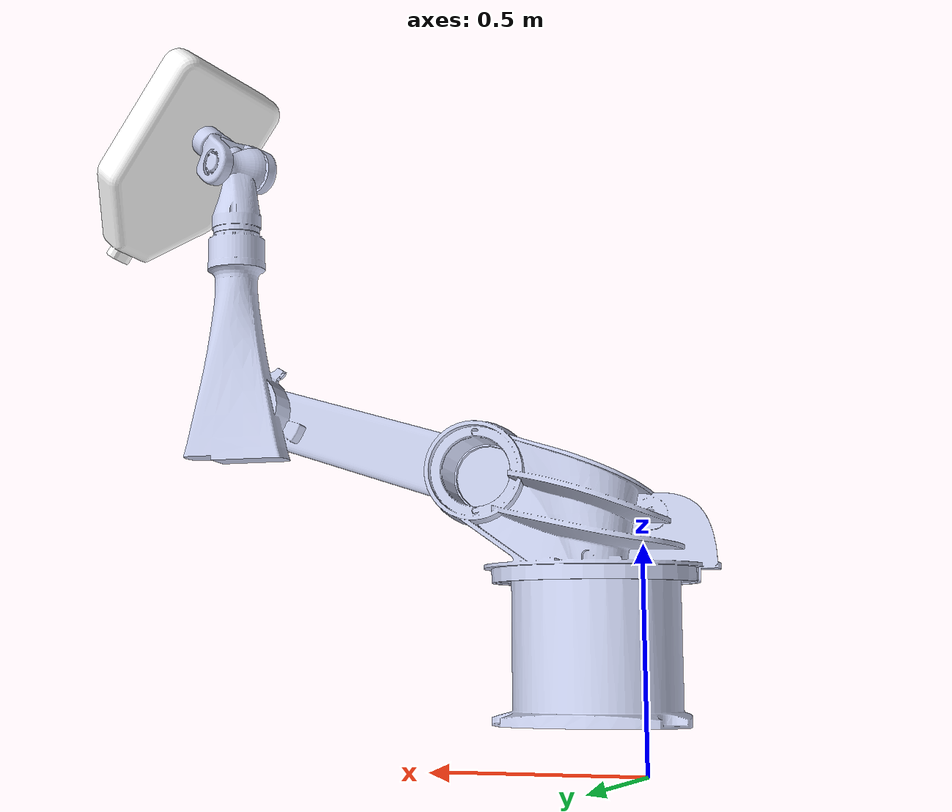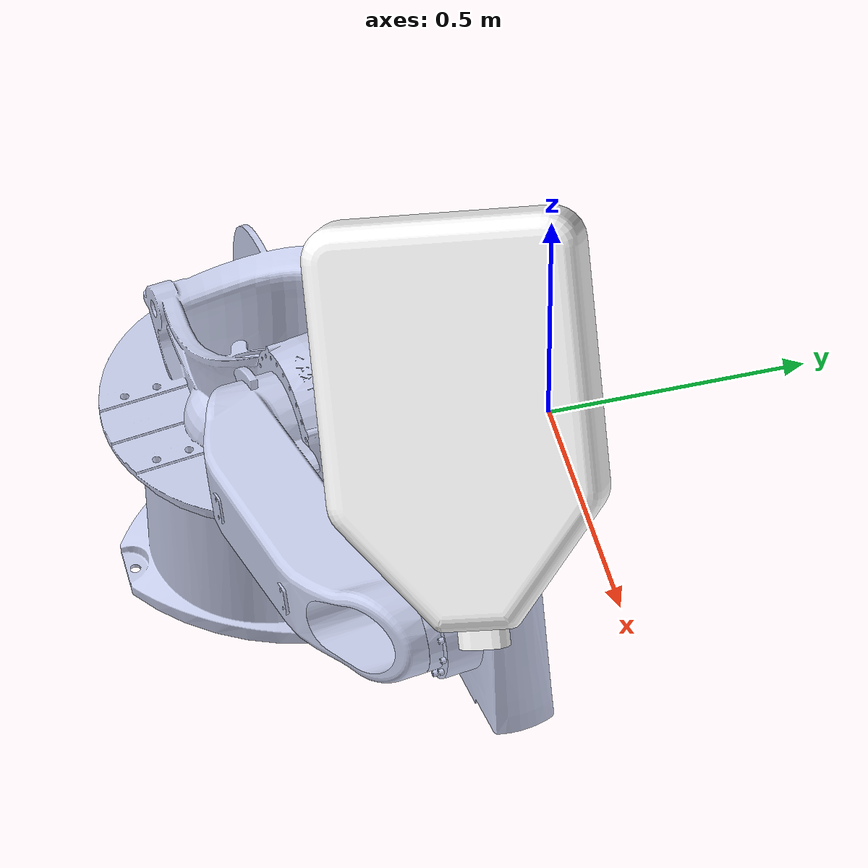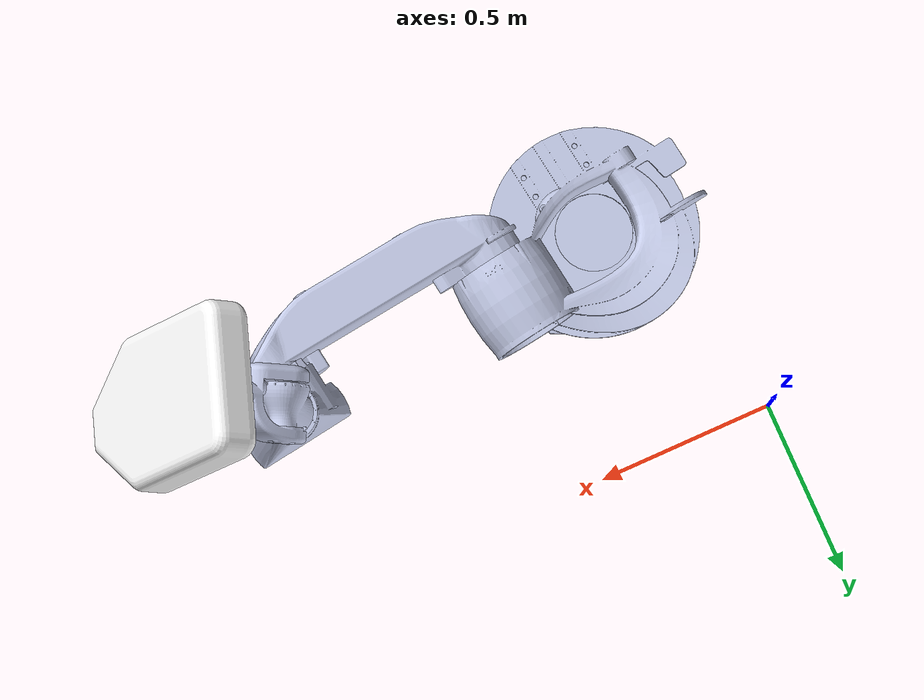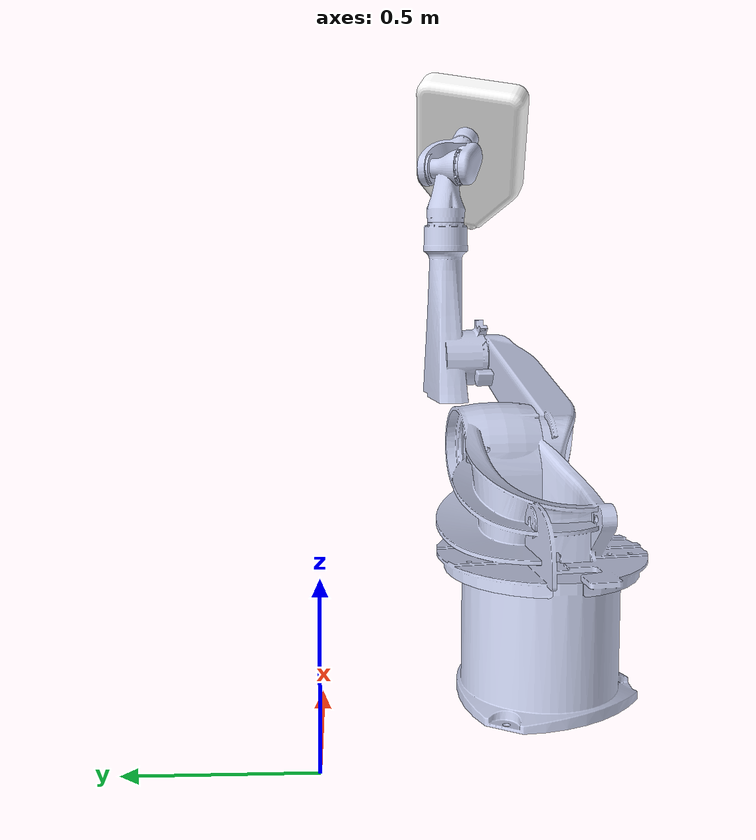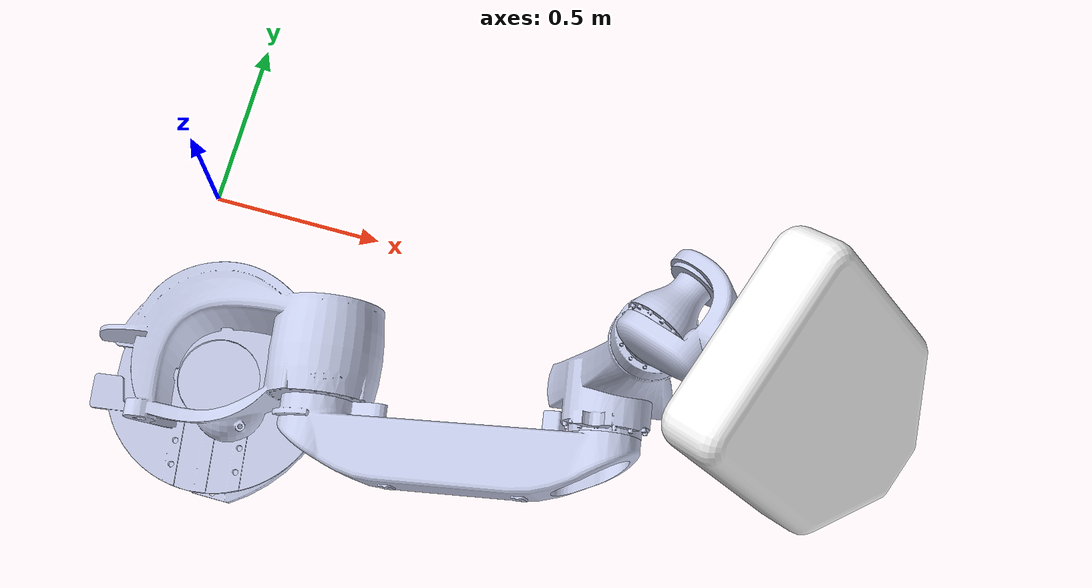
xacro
<?xml version="1.0"?>
<!-- Name your robot here -->
<robot name ="ck_robot" xmlns:xacro="http://wiki.ros.org/xacro">

<!-- Include your urdf files here -->
	<!-- Include Robot's urdf filepath -->
	<!-- Include Lidar's urdf filepath -->
	<xacro:include filename="ck_robot.urdf"/>

<!--  Gazebo plugin for control here is already added for you -->
	<gazebo>
		<plugin name="gazebo_ros_control" filename="libgazebo_ros_control.so">
			<robotNamespace>/ck_robot</robotNamespace>
			<robotSimType>gazebo_ros_control/DefaultRobotHWSim</robotSimType>
			<legacyModeNS>true</legacyModeNS>
		</plugin>
	</gazebo>
</robot>

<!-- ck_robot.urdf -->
<robot
  name="ck_robot">
  <link name="world" />
  <link
    name="base_link">
    <inertial>
      <origin
        xyz="0.268464969990104 0.284520791548056 0.59851966368383"
        rpy="0 0 0" />
      <mass
        value="60.1875042918917" />
      <inertia
        ixx="1.58272942356572"
        ixy="-1.00442193082991E-08"
        ixz="-6.13419327373049E-09"
        iyy="1.49216689626303"
        iyz="8.19101028288463E-06"
        izz="1.58271804885092" />
    </inertial>
    <visual>
      <origin
        xyz="0 0 0"
        rpy="0 0 0" />
      <geometry>
        <mesh
          filename="package://ck_robot/meshes/base_link.STL" />
      </geometry>
      <material
        name="">
        <color
          rgba="0.792156862745098 0.819607843137255 0.933333333333333 1" />
      </material>
    </visual>
    <collision>
      <origin
        xyz="0 0 0"
        rpy="0 0 0" />
      <geometry>
        <mesh
          filename="package://ck_robot/meshes/base_link.STL" />
      </geometry>
    </collision>
  </link>
  <link
    name="link_1">
    <inertial>
      <origin
        xyz="0.10280930500268 0.172949537137502 -0.0437085356954771"
        rpy="0 0 0" />
      <mass
        value="1" />
      <inertia
        ixx="0.361208774715564"
        ixy="-0.152719163095036"
        ixz="0.00577624624249581"
        iyy="0.646329104489432"
        iyz="0.0274979066592256"
        izz="0.643947644736266" />
    </inertial>
    <visual>
      <origin
        xyz="0 0 0"
        rpy="0 0 0" />
      <geometry>
        <mesh
          filename="package://ck_robot/meshes/link_1.STL" />
      </geometry>
      <material
        name="">
        <color
          rgba="0.792156862745098 0.819607843137255 0.933333333333333 1" />
      </material>
    </visual>
    <collision>
      <origin
        xyz="0 0 0"
        rpy="0 0 0" />
      <geometry>
        <mesh
          filename="package://ck_robot/meshes/link_1.STL" />
      </geometry>
    </collision>
  </link>
  <joint name="world_to_base_link" type="fixed">
    <parent link="world" />
    <child link="base_link" />
  </joint>
  <joint
    name="joint_1"
    type="continuous">
    <origin
      xyz="0.268464971217371 -0.598518951650115 0.442083103301491"
      rpy="1.5707963267949 0 0.144460400809996" />
    <parent
      link="base_link" />
    <child
      link="link_1" />
    <axis
      xyz="0 1 0" />
  </joint>
  <link
    name="link_2">
    <inertial>
      <origin
        xyz="0.000189695035715642 0.303434216398242 0.155090259860337"
        rpy="0 0 0" />
      <mass
        value="1" />
      <inertia
        ixx="0.593276686471504"
        ixy="-0.000669754979847111"
        ixz="0.000213393474780362"
        iyy="0.0591609394583497"
        iyz="-0.0259775958519965"
        izz="0.59310381188485" />
    </inertial>
    <visual>
      <origin
        xyz="0 0 0"
        rpy="0 0 0" />
      <geometry>
        <mesh
          filename="package://ck_robot/meshes/link_2.STL" />
      </geometry>
      <material
        name="">
        <color
          rgba="0.792156862745098 0.819607843137255 0.933333333333333 1" />
      </material>
    </visual>
    <collision>
      <origin
        xyz="0 0 0"
        rpy="0 0 0" />
      <geometry>
        <mesh
          filename="package://ck_robot/meshes/link_2.STL" />
      </geometry>
    </collision>
  </link>
  <joint
    name="joint_2"
    type="continuous">
    <origin
      xyz="0.285 0.279 0"
      rpy="0 0 -1.27141640789434" />
    <parent
      link="link_1" />
    <child
      link="link_2" />
    <axis
      xyz="0 0 1" />
  </joint>
  <link
    name="link_3">
    <inertial>
      <origin
        xyz="-0.106989348552819 -0.0174835771333657 0.017651513701905"
        rpy="0 0 0" />
      <mass
        value="1" />
      <inertia
        ixx="0.0627293128565049"
        ixy="-0.0084283421700578"
        ixz="0.0203383321733268"
        iyy="0.445734573968538"
        iyz="0.00436690377630759"
        izz="0.457163524633178" />
    </inertial>
    <visual>
      <origin
        xyz="0 0 0"
        rpy="0 0 0" />
      <geometry>
        <mesh
          filename="package://ck_robot/meshes/link_3.STL" />
      </geometry>
      <material
        name="">
        <color
          rgba="0.792156862745098 0.819607843137255 0.933333333333333 1" />
      </material>
    </visual>
    <collision>
      <origin
        xyz="0 0 0"
        rpy="0 0 0" />
      <geometry>
        <mesh
          filename="package://ck_robot/meshes/link_3.STL" />
      </geometry>
    </collision>
  </link>
  <joint
    name="joint_3"
    type="continuous">
    <origin
      xyz="0 0.67999999999999 0"
      rpy="-3.14159265358979 0 -0.313045625626455" />
    <parent
      link="link_2" />
    <child
      link="link_3" />
    <axis
      xyz="0 0 1" />
  </joint>
  <link
    name="link_4">
    <inertial>
      <origin
        xyz="0.00674065478440106 0.108276652100493 0.000146088737235539"
        rpy="0 0 0" />
      <mass
        value="1" />
      <inertia
        ixx="0.0138352619261862"
        ixy="-0.00127244271994891"
        ixz="-7.82632002535892E-06"
        iyy="0.00431376770209576"
        iyz="1.87534580523264E-06"
        izz="0.0140397247314502" />
    </inertial>
    <visual>
      <origin
        xyz="0 0 0"
        rpy="0 0 0" />
      <geometry>
        <mesh
          filename="package://ck_robot/meshes/link_4.STL" />
      </geometry>
      <material
        name="">
        <color
          rgba="0.792156862745098 0.819607843137255 0.933333333333333 1" />
      </material>
    </visual>
    <collision>
      <origin
        xyz="0 0 0"
        rpy="0 0 0" />
      <geometry>
        <mesh
          filename="package://ck_robot/meshes/link_4.STL" />
      </geometry>
    </collision>
  </link>
  <joint
    name="joint_4"
    type="continuous">
    <origin
      xyz="-0.474166946244357 -0.022499999999998 0.0329999999999995"
      rpy="0 0.956127472462032 1.5707963267949" />
    <parent
      link="link_3" />
    <child
      link="link_4" />
    <axis
      xyz="0 1 0" />
  </joint>
  <link
    name="link_5">
    <inertial>
      <origin
        xyz="-0.0153730128815858 3.63685714777073E-06 0.0564414779216935"
        rpy="0 0 0" />
      <mass
        value="1" />
      <inertia
        ixx="0.00559747896590421"
        ixy="-1.9326688324012E-07"
        ixz="0.000253093583976348"
        iyy="0.0113977417293985"
        iyz="-5.42342142822669E-07"
        izz="0.00867630419925224" />
    </inertial>
    <visual>
      <origin
        xyz="0 0 0"
        rpy="0 0 0" />
      <geometry>
        <mesh
          filename="package://ck_robot/meshes/link_5.STL" />
      </geometry>
      <material
        name="">
        <color
          rgba="0.792156862745098 0.819607843137255 0.933333333333333 1" />
      </material>
    </visual>
    <collision>
      <origin
        xyz="0 0 0"
        rpy="0 0 0" />
      <geometry>
        <mesh
          filename="package://ck_robot/meshes/link_5.STL" />
      </geometry>
    </collision>
  </link>
  <joint
    name="joint_5"
    type="continuous">
    <origin
      xyz="0 0.192333053755625 0"
      rpy="2.51840109391516 0 3.14159265358979" />
    <parent
      link="link_4" />
    <child
      link="link_5" />
    <axis
      xyz="1 0 0" />
  </joint>
  <link
    name="link_6">
    <inertial>
      <origin
        xyz="8.56454542169649E-06 -0.0809075419567876 0.265444706436671"
        rpy="0 0 0" />
      <mass
        value="1" />
      <inertia
        ixx="0.638941947594122"
        ixy="7.18496179886287E-05"
        ixz="-8.54297844271601E-08"
        iyy="0.314905899619827"
        iyz="0.00125056364890488"
        izz="0.894635702009243" />
    </inertial>
    <visual>
      <origin
        xyz="0 0 0"
        rpy="0 0 0" />
      <geometry>
        <mesh
          filename="package://ck_robot/meshes/link_6.STL" />
      </geometry>
      <material
        name="">
        <color
          rgba="1 1 1 1" />
      </material>
    </visual>
    <collision>
      <origin
        xyz="0 0 0"
        rpy="0 0 0" />
      <geometry>
        <mesh
          filename="package://ck_robot/meshes/link_6.STL" />
      </geometry>
    </collision>
  </link>
  <joint
    name="joint_6"
    type="continuous">
    <origin
      xyz="-0.0159999999999946 0 0"
      rpy="0 0 0.232084976469764" />
    <parent
      link="link_5" />
    <child
      link="link_6" />
    <axis
      xyz="0 0 1" />
  </joint>

  <transmission name="trans_1">
    <type>transmission_interface/SimpleTransmission</type>
    <joint name="joint_1">
      <hardwareInterface>hardware_interface/VelocityJointInterface</hardwareInterface>
    </joint>
    <actuator name="motor_1">
      <mechanicalReduction>50</mechanicalReduction>
      <hardwareInterface>hardware_interface/VelocityJointInterface</hardwareInterface>
    </actuator>
 </transmission>

  <transmission name="trans_2">
    <type>transmission_interface/SimpleTransmission</type>
    <joint name="joint_2">
      <hardwareInterface>hardware_interface/VelocityJointInterface</hardwareInterface>
    </joint>
    <actuator name="motor_2">
      <mechanicalReduction>50</mechanicalReduction>
      <hardwareInterface>hardware_interface/VelocityJointInterface</hardwareInterface>
    </actuator>
 </transmission>

  <transmission name="trans_3">
    <type>transmission_interface/SimpleTransmission</type>
    <joint name="joint_3">
      <hardwareInterface>hardware_interface/VelocityJointInterface</hardwareInterface>
    </joint>
    <actuator name="motor_3">
      <mechanicalReduction>50</mechanicalReduction>
      <hardwareInterface>hardware_interface/VelocityJointInterface</hardwareInterface>
    </actuator>
 </transmission>

  <transmission name="trans_4">
    <type>transmission_interface/SimpleTransmission</type>
    <joint name="joint_4">
      <hardwareInterface>hardware_interface/VelocityJointInterface</hardwareInterface>
    </joint>
    <actuator name="motor_4">
      <mechanicalReduction>50</mechanicalReduction>
      <hardwareInterface>hardware_interface/VelocityJointInterface</hardwareInterface>
    </actuator>
 </transmission>

  <transmission name="trans_5">
    <type>transmission_interface/SimpleTransmission</type>
    <joint name="joint_5">
      <hardwareInterface>hardware_interface/VelocityJointInterface</hardwareInterface>
    </joint>
    <actuator name="motor_5">
      <mechanicalReduction>50</mechanicalReduction>
      <hardwareInterface>hardware_interface/VelocityJointInterface</hardwareInterface>
    </actuator>
 </transmission>

  <transmission name="trans_6">
    <type>transmission_interface/SimpleTransmission</type>
    <joint name="joint_6">
      <hardwareInterface>hardware_interface/VelocityJointInterface</hardwareInterface>
    </joint>
    <actuator name="motor_6">
      <mechanicalReduction>50</mechanicalReduction>
      <hardwareInterface>hardware_interface/VelocityJointInterface</hardwareInterface>
    </actuator>
 </transmission>
</robot>
